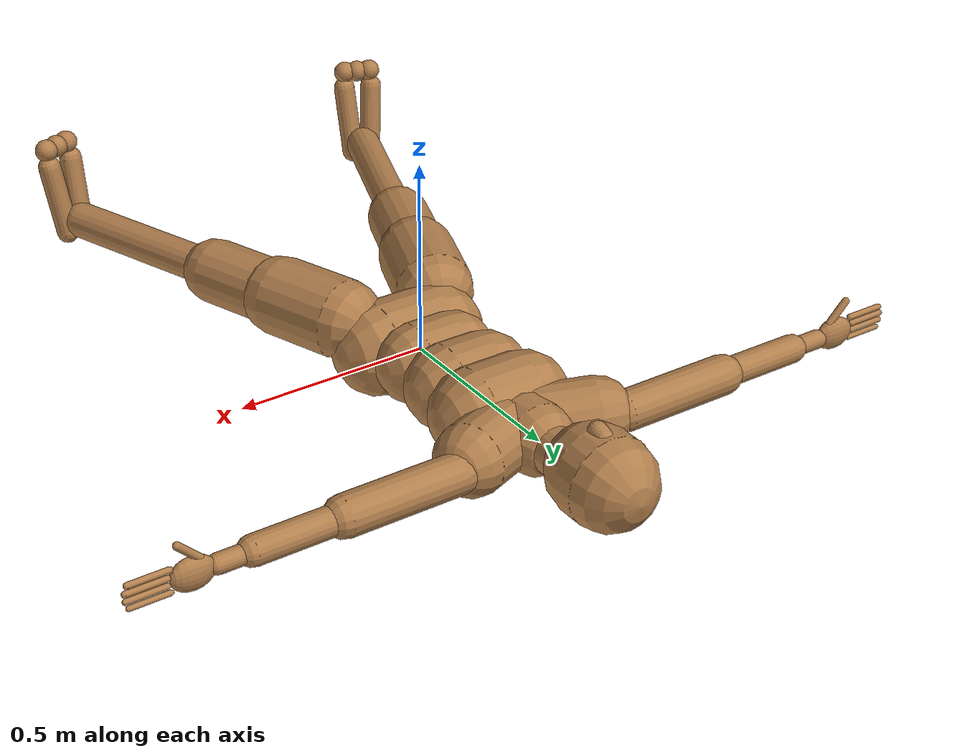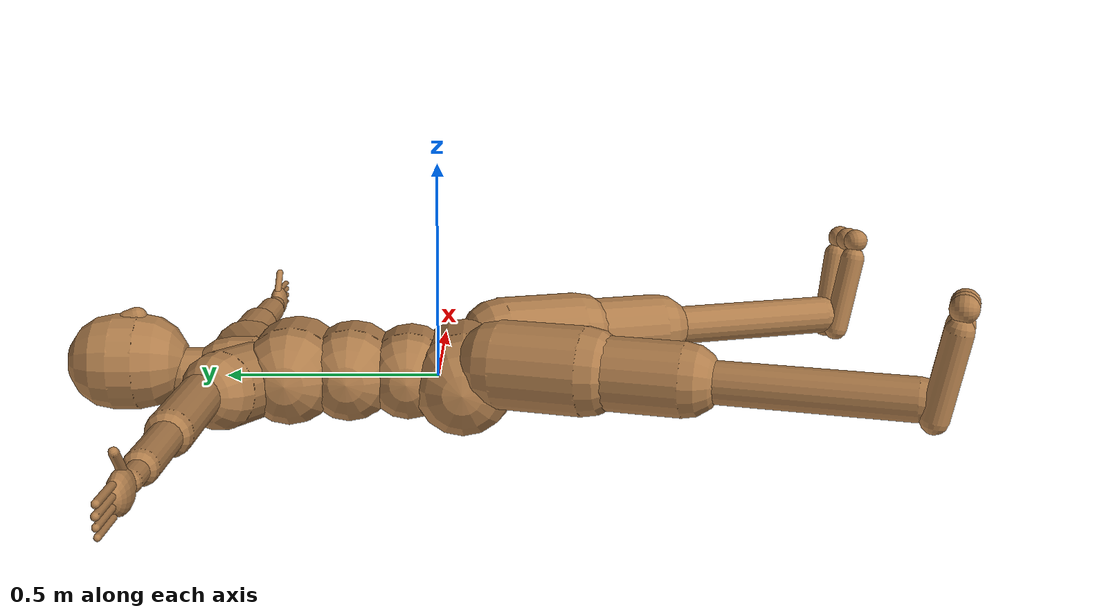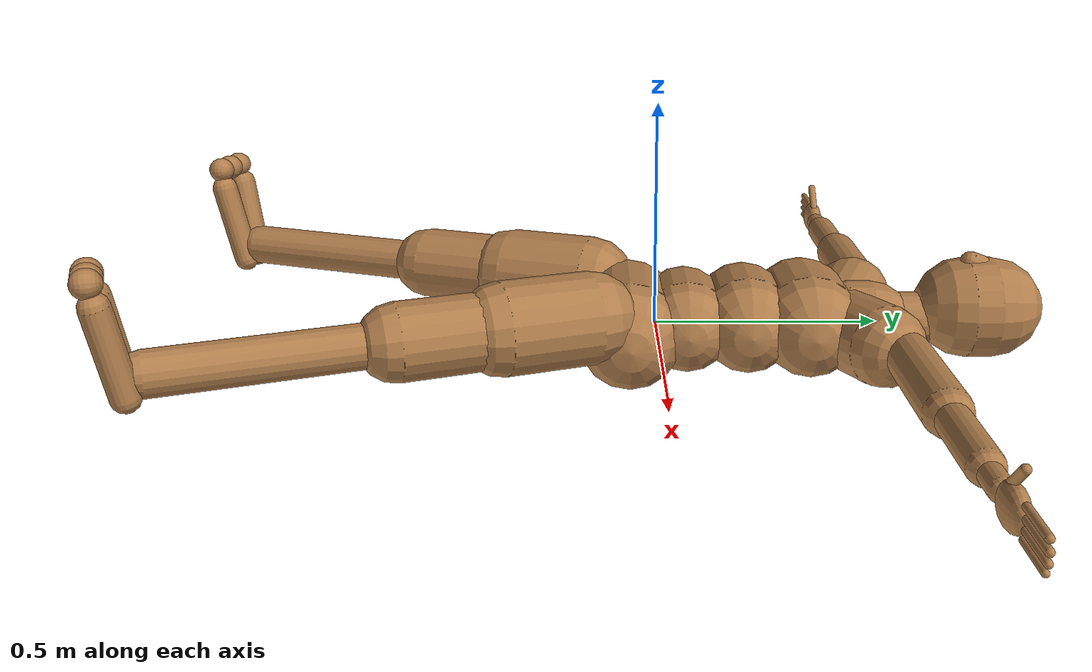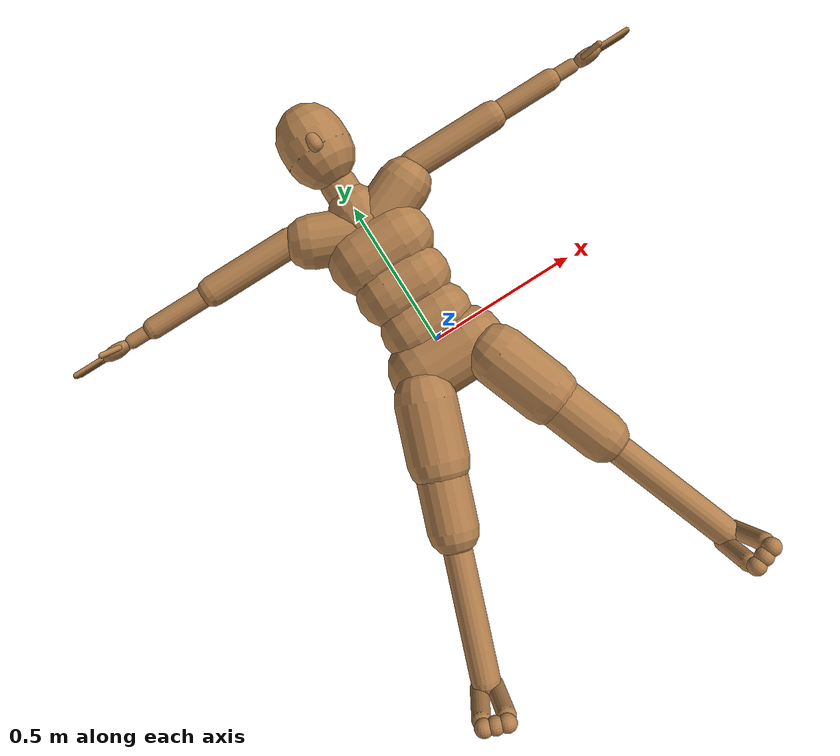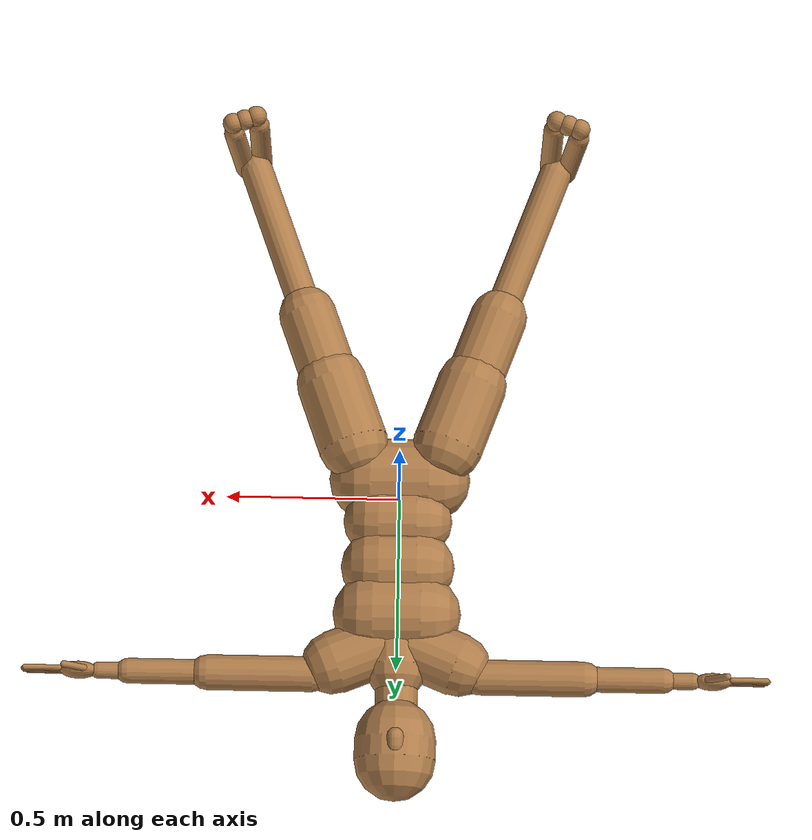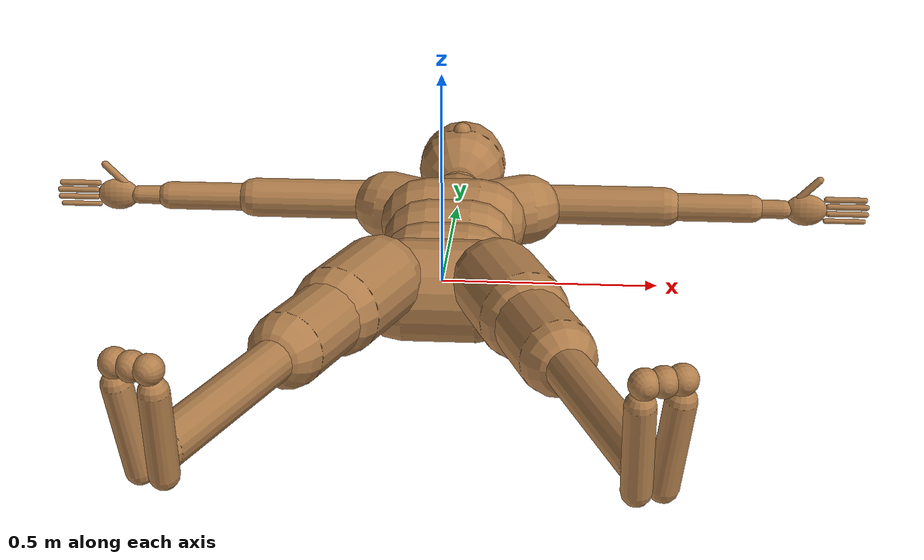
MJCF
<mujoco model="floor">
  <compiler boundmass="1e-05" boundinertia="1e-11" coordinate="local" angle="radian" eulerseq="xyz"/>
  <option timestep="0.005" cone="elliptic" noslip_iterations="5" noslip_tolerance="0.0"/>
  <size njmax="500" nconmax="500"/>
  <visual>
    <headlight ambient="0.40000000000000002 0.40000000000000002 0.40000000000000002" diffuse="0.80000000000000004 0.80000000000000004 0.80000000000000004" specular="0.10000000000000001 0.10000000000000001 0.10000000000000001"/>
    <map znear="0.01"/>
    <scale forcewidth="0.01" contactwidth="0.06" contactheight="0.01" jointwidth="0.01" framelength="0.3" framewidth="0.01"/>
  </visual>
  <default>
    <default class="/"/>
    <default class="walker/">
      <joint limited="true" solimplimit="0 0.98999999999999999 0.01" stiffness="1.0" armature="0.01" damping="1.0"/>
      <geom condim="1" size="0.029999999999999999 0 0" friction="0.69999999999999996 0.0050000000000000001 0.0001" solref="0.014999999999999999 1" solimp="0.98999999999999999 0.98999999999999999 0.0030000000000000001"/>
      <general ctrllimited="true" forcelimited="true" ctrlrange="-1 1"/>
      <default class="walker/humanoid">
        <geom type="capsule" group="2" material="walker/self"/>
        <default class="walker/stiff_medium">
          <joint stiffness="10.0" damping="2.0"/>
        </default>
        <default class="walker/stiff_medium_higher">
          <joint stiffness="50.0" damping="4.0"/>
        </default>
        <default class="walker/stiff_high">
          <joint stiffness="200.0" damping="5.0"/>
        </default>
        <default class="walker/sensor_site">
          <site type="sphere" group="4" rgba="1 0 0 0.5" size="0.01"/>
        </default>
        <default class="walker/contact">
          <geom condim="3" priority="1" friction="1 0.0050000000000000001 0.0001" solref="0.014999999999999999 1" solimp="0.97999999999999998 0.97999999999999998 0.001"/>
        </default>
      </default>
    </default>
  </default>
  <asset>
    <texture name="groundplane" type="2d" builtin="checker" rgb1="0.20000000000000001 0.29999999999999999 0.40000000000000002" rgb2="0.10000000000000001 0.20000000000000001 0.29999999999999999" mark="edge" markrgb="0.80000000000000004 0.80000000000000004 0.80000000000000004" width="200" height="200"/>
    <material name="groundplane" class="/" texture="groundplane" texrepeat="2 2" texuniform="true" reflectance="0.2"/>
    <material name="walker/self" class="walker/" rgba="0.69999999999999996 0.5 0.29999999999999999 1"/>
  </asset>
  <worldbody>
    <camera name="top_camera" class="/" fovy="10.058147163570894" pos="0 0 100" quat="1 0 0 0"/>
    <body name="walker/">
      <freejoint name="walker/"/>
      <light name="walker/tracking_light" class="walker/" mode="trackcom" pos="0 0 8.4000000000000004" dir="0 0 -1"/>
      <camera name="walker/back" class="walker/" mode="trackcom" pos="0 3.5999999999999996 1.6799999999999999" xyaxes="-1 0 0 0 -1 2"/>
      <camera name="walker/side" class="walker/" mode="trackcom" pos="-3.5999999999999996 0 1.6799999999999999" xyaxes="0 -1 0 1 0 2"/>
      <camera name="walker/front_side" class="walker/" mode="trackcom" pos="-2.3999999999999999 -2.3999999999999999 0.59999999999999998" xyaxes="0.5 -0.5 0 0.10000000000000001 0.10000000000000001 1"/>
      <body name="walker/root" childclass="walker/humanoid">
        <camera name="walker/bodycam" fovy="80.0" pos="0 0.35999999999999999 0.12" xyaxes="-1 0 0 0 1 0"/>
        <site name="walker/root" rgba="0.5 0.5 0.5 0" size="0.012"/>
        <geom name="walker/root_geom" size="0.12 0.084000000000000005" density="674.0490479671504" pos="0 -0.059999999999999998 0" quat="1 0 -1 0"/>
        <body name="walker/lhipjoint">
          <geom name="walker/lhipjoint" size="0.0095999999999999992 0.026248356" density="674.0490479671504" pos="0.0611622 -0.055084439999999998 0.029667599999999995" quat="0.57079999999999997 -0.56660200000000005 -0.59426400000000001 0"/>
          <body name="walker/lfemur" pos="0.1223244 -0.11016888 0.059335319999999997" quat="0.98480800000000002 0 0 0.173648">
            <joint name="walker/lfemurrz" class="walker/stiff_medium" pos="0 0 0" axis="0 0 1" range="-1.0471999999999999 1.22173" damping="10.0"/>
            <joint name="walker/lfemurry" class="walker/stiff_medium" pos="0 0 0" axis="0 1 0" range="-1.22173 1.22173" damping="10.0"/>
            <joint name="walker/lfemurrx" class="walker/stiff_medium" pos="0 0 0" axis="1 0 0" range="-2.7925300000000002 0.34906599999999999" damping="15.0"/>
            <geom name="walker/lfemur_upper" size="0.10200000000000001 0.099600000000000008" mass="0.0" pos="0 -0.13856760000000001 0" quat="0.69636399999999998 -0.69636399999999998 -0.12278799999999999 -0.12278799999999999"/>
            <geom name="walker/lfemur" size="0.084000000000000005 0.21867119999999998" density="674.0490479671504" pos="0 -0.24296759999999998 0" quat="0.69636399999999998 -0.69636399999999998 -0.12278799999999999 -0.12278799999999999"/>
            <body name="walker/ltibia" pos="0 -0.48593399999999998 0">
              <joint name="walker/ltibiarx" pos="0 0 0" axis="1 0 0" range="0.01 2.96706" damping="8.0"/>
              <geom name="walker/ltibia" size="0.048000000000000001 0.21907368000000002" density="674.0490479671504" pos="0 -0.2434152 0" quat="0.69636399999999998 -0.69636399999999998 -0.12278799999999999 -0.12278799999999999"/>
              <body name="walker/lfoot" pos="0 -0.49883159999999993 0" quat="1 -1 0 0">
                <site name="walker/lfoot_touch" class="walker/sensor_site" type="capsule" size="0.029999999999999999 0.012" pos="0 0.024 -0.017999999999999999" zaxis="1 0 0"/>
                <joint name="walker/lfootrz" class="walker/stiff_medium" pos="0 0 0" axis="0 0 1" range="-1.22173 0.34906599999999999" damping="3.0"/>
                <joint name="walker/lfootrx" class="walker/stiff_medium" pos="0 0 0" axis="1 0 0" range="-0.78539800000000004 0.80000000000000004" damping="6.0"/>
                <geom name="walker/lfoot" class="walker/contact" size="0.029999999999999999 0.096000000000000002" density="674.0490479671504" pos="-0.03239999700072 -0.059999999999999998 -0.01366536" quat="0.76725516000000005 -0.64051113999999998 0.023064870000000001 -0.023065829999999999"/>
                <geom name="walker/lfoot_ch" class="walker/contact" size="0.029999999999999999 0.096000000000000002" density="674.0490479671504" pos="0.032400002999279996 -0.059999999999999998 -0.01366536" quat="0.72887265999999995 -0.59399462000000003 -0.24074282999999999 -0.2407425"/>
                <body name="walker/ltoes" pos="0 -0.18764640000000002 -0.027330719999999999">
                  <joint name="walker/ltoesrx" pos="0 0 0" axis="1 0 0" range="-1.5708 0.34906599999999999" damping="1.0"/>
                  <geom name="walker/ltoes0" class="walker/contact" type="sphere" size="0.029999999999999999" density="674.0490479671504" pos="0 -0.012 -0.012"/>
                  <geom name="walker/ltoes1" class="walker/contact" type="sphere" size="0.029999999999999999" density="674.0490479671504" pos="0.035999999999999997 -0.012 -0.012"/>
                  <geom name="walker/ltoes2" class="walker/contact" type="sphere" size="0.029999999999999999" density="674.0490479671504" pos="-0.035999999999999997 -0.012 -0.012"/>
                  <site name="walker/ltoes_touch" class="walker/sensor_site" type="capsule" size="0.029999999999999999 0.035999999999999997" pos="0 -0.012 -0.024" zaxis="1 0 0"/>
                </body>
              </body>
            </body>
          </body>
        </body>
        <body name="walker/rhipjoint">
          <geom name="walker/rhipjoint" size="0.0095999999999999992 0.026248356" density="674.0490479671504" pos="-0.0611622 -0.055084439999999998 0.029667599999999995" quat="0.57485600000000003 -0.54759400000000003 0.60801400000000005 0"/>
          <body name="walker/rfemur" pos="-0.1223244 -0.11016888 0.059335319999999997" quat="0.98480800000000002 0 0 -0.173648">
            <joint name="walker/rfemurrz" class="walker/stiff_medium" pos="0 0 0" axis="0 0 1" range="-1.22173 1.0471999999999999" damping="10.0"/>
            <joint name="walker/rfemurry" class="walker/stiff_medium" pos="0 0 0" axis="0 1 0" range="-1.22173 1.22173" damping="10.0"/>
            <joint name="walker/rfemurrx" class="walker/stiff_medium" pos="0 0 0" axis="1 0 0" range="-2.7925300000000002 0.34906599999999999" damping="15.0"/>
            <geom name="walker/rfemur_upper" size="0.10200000000000001 0.099600000000000008" mass="0.0" pos="0 -0.13856760000000001 0" quat="0.69636399999999998 -0.69636399999999998 0.12278799999999999 0.12278799999999999"/>
            <geom name="walker/rfemur" size="0.084000000000000005 0.21867119999999998" density="674.0490479671504" pos="0 -0.24296759999999998 0" quat="0.69636399999999998 -0.69636399999999998 0.12278799999999999 0.12278799999999999"/>
            <body name="walker/rtibia" pos="0 -0.48593399999999998 0">
              <joint name="walker/rtibiarx" pos="0 0 0" axis="1 0 0" range="0.01 2.96706" damping="8.0"/>
              <geom name="walker/rtibia" size="0.048000000000000001 0.21907368000000002" density="674.0490479671504" pos="0 -0.2434152 0" quat="0.69636399999999998 -0.69636399999999998 0.12278799999999999 0.12278799999999999"/>
              <body name="walker/rfoot" pos="0 -0.49883159999999993 0" quat="0.70710700000000004 -0.70710700000000004 0 0">
                <site name="walker/rfoot_touch" class="walker/sensor_site" type="capsule" size="0.029999999999999999 0.012" pos="0 0.024 -0.017999999999999999" zaxis="1 0 0"/>
                <joint name="walker/rfootrz" class="walker/stiff_medium" pos="0 0 0" axis="0 0 1" range="-0.34906599999999999 1.22173" damping="3.0"/>
                <joint name="walker/rfootrx" class="walker/stiff_medium" pos="0 0 0" axis="1 0 0" range="-0.78539800000000004 0.80000000000000004" damping="6.0"/>
                <geom name="walker/rfoot" class="walker/contact" size="0.029999999999999999 0.096000000000000002" density="674.0490479671504" pos="-0.032399995837919998 -0.059999999999999998 -0.01366536" quat="0.73520686999999996 -0.58633522999999999 0.24050108000000001 0.24050078999999999"/>
                <geom name="walker/rfoot_ch" class="walker/contact" size="0.029999999999999999 0.096000000000000002" density="674.0490479671504" pos="0.032400004162079998 -0.059999999999999998 -0.01366536" quat="0.77312468999999995 -0.63323099999999999 -0.025458459999999999 0.025458359999999999"/>
                <body name="walker/rtoes" pos="0 -0.18764640000000002 -0.027330719999999999">
                  <joint name="walker/rtoesrx" pos="0 0 0" axis="1 0 0" range="-1.5708 0.34906599999999999" damping="1.0"/>
                  <geom name="walker/rtoes0" class="walker/contact" type="sphere" size="0.029999999999999999" density="674.0490479671504" pos="0 -0.012 -0.012"/>
                  <geom name="walker/rtoes1" class="walker/contact" type="sphere" size="0.029999999999999999" density="674.0490479671504" pos="0.035999999999999997 -0.012 -0.012"/>
                  <geom name="walker/rtoes2" class="walker/contact" type="sphere" size="0.029999999999999999" density="674.0490479671504" pos="-0.035999999999999997 -0.012 -0.012"/>
                  <site name="walker/rtoes_touch" class="walker/sensor_site" type="capsule" size="0.029999999999999999 0.035999999999999997" pos="0 -0.012 -0.024" zaxis="1 0 0"/>
                </body>
              </body>
            </body>
          </body>
        </body>
        <body name="walker/lowerback">
          <joint name="walker/lowerbackrz" class="walker/stiff_high" pos="0 0 0" axis="0 0 1" range="-0.52359900000000004 0.52359900000000004" damping="20.0"/>
          <joint name="walker/lowerbackry" class="walker/stiff_high" pos="0 0 0" axis="0 1 0" range="-0.52359900000000004 0.52359900000000004" damping="20.0"/>
          <joint name="walker/lowerbackrx" class="walker/stiff_medium" pos="0 0 0" axis="1 0 0" range="-0.34906599999999999 0.78539800000000004" damping="15.0"/>
          <geom name="walker/lowerback" size="0.10200000000000001 0.054480192000000004" density="674.0490479671504" pos="0.0033951719999999997 0.067927799999999997 0.012" quat="1 0 1 0"/>
          <body name="walker/upperback" pos="0.00067903439999999994 0.13585559999999999 -0.0096635759999999984">
            <joint name="walker/upperbackrz" class="walker/stiff_high" pos="0 0 0" axis="0 0 1" range="-0.52359900000000004 0.52359900000000004" damping="12.0"/>
            <joint name="walker/upperbackry" class="walker/stiff_high" pos="0 0 0" axis="0 1 0" range="-0.52359900000000004 0.52359900000000004" damping="8.0"/>
            <joint name="walker/upperbackrx" class="walker/stiff_medium" pos="0 0 0" axis="1 0 0" range="-0.34906599999999999 0.78539800000000004" damping="15.0"/>
            <geom name="walker/upperback" size="0.108 0.054511391999999999" density="674.0490479671504" pos="0.00030751680000000003 0.068136240000000001 0.024" quat="1 0 1 0"/>
            <body name="walker/thorax" pos="0.00061503360000000006 0.13627199999999998 0.0011241852000000001">
              <joint name="walker/thoraxrz" class="walker/stiff_high" pos="0 0 0" axis="0 0 1" range="-0.52359900000000004 0.52359900000000004" damping="12.0"/>
              <joint name="walker/thoraxry" class="walker/stiff_high" pos="0 0 0" axis="0 1 0" range="-0.52359900000000004 0.52359900000000004" damping="8.0"/>
              <joint name="walker/thoraxrx" class="walker/stiff_medium" pos="0 0 0" axis="1 0 0" range="-0.34906599999999999 0.78539800000000004" damping="15.0"/>
              <geom name="walker/thorax" size="0.11399999999999999 0.068424719999999994" density="674.0490479671504" pos="0 0.068366999999999997 0.024" quat="1 0 1 0"/>
              <body name="walker/lowerneck" pos="0 0.13673399999999999 0.0056164439999999991">
                <joint name="walker/lowerneckrz" class="walker/stiff_medium_higher" pos="0 0 0" axis="0 0 1" range="-0.52359900000000004 0.52359900000000004" damping="20.0"/>
                <joint name="walker/lowerneckry" class="walker/stiff_medium_higher" pos="0 0 0" axis="0 1 0" range="-0.52359900000000004 0.52359900000000004" damping="20.0"/>
                <joint name="walker/lowerneckrx" class="walker/stiff_medium_higher" pos="0 0 0" axis="1 0 0" range="-0.34906599999999999 0.78539800000000004" damping="20.0"/>
                <geom name="walker/lowerneck" size="0.089999999999999997 0.027350699999999999" density="674.0490479671504" pos="-0.001980852 0.054288119999999995 0.0064123079999999994" quat="1 1 0 0"/>
                <body name="walker/upperneck" pos="-0.0039617159999999997 0.10857611999999998 0.01282464">
                  <joint name="walker/upperneckrz" class="walker/stiff_medium_higher" pos="0 0 0" axis="0 0 1" range="-0.52359900000000004 0.52359900000000004" damping="10.0"/>
                  <joint name="walker/upperneckry" class="walker/stiff_medium_higher" pos="0 0 0" axis="0 1 0" range="-0.52359900000000004 0.52359900000000004" damping="10.0"/>
                  <joint name="walker/upperneckrx" class="walker/stiff_medium_higher" pos="0 0 0" axis="1 0 0" range="-0.34906599999999999 0.78539800000000004" damping="10.0"/>
                  <geom name="walker/upperneck" size="0.059999999999999998 0.02703264" density="674.0490479671504" pos="0.00060105 0.053994719999999996 -0.0026957280000000001" quat="1 1 0 0"/>
                  <body name="walker/head" pos="0.0012021 0.156 -0.0053914560000000002">
                    <camera name="walker/egocentric" fovy="80.0" pos="0 0 0" xyaxes="-1 0 0 0 1 0"/>
                    <joint name="walker/headrz" class="walker/stiff_medium_higher" pos="0 0 0" axis="0 0 1" range="-0.52359900000000004 0.52359900000000004" damping="2.0"/>
                    <joint name="walker/headry" class="walker/stiff_medium_higher" pos="0 0 0" axis="0 1 0" range="-0.52359900000000004 0.52359900000000004" damping="2.0"/>
                    <joint name="walker/headrx" class="walker/stiff_medium_higher" pos="0 0 0" axis="1 0 0" range="-0.34906599999999999 0.78539800000000004" damping="2.0"/>
                    <geom name="walker/head" size="0.11399999999999999 0.028924800000000001" density="674.0490479671504" pos="0.00040975799999999998 0.057820799999999992 0.029999999999999999" quat="1 1 0 0"/>
                    <geom name="walker/face" type="capsule" contype="0" conaffinity="0" size="0.078 0.016799999999999999" mass="0.0" pos="0.00040975799999999998 0.057820799999999992 0.012" quat="0.71788700000000005 0.69614200000000004 -0.0049333399999999996 0"/>
                    <body name="walker/face" pos="0 0.046800000000000001 0.13200000000000001">
                      <geom name="walker/nose" type="capsule" contype="0" conaffinity="0" group="1" size="0.024 0.012" mass="0.0" pos="0 0 0" quat="1 0.69999999999999996 0 0"/>
                    </body>
                  </body>
                </body>
              </body>
              <body name="walker/lclavicle" pos="0 0.13673399999999999 0.0056164439999999991">
                <joint name="walker/lclaviclerz" class="walker/stiff_high" pos="0 0 0" axis="0 0 1" range="0 0.34906599999999999" damping="20.0"/>
                <joint name="walker/lclaviclery" class="walker/stiff_high" pos="0 0 0" axis="0 1 0" range="-0.34906599999999999 0.17453299999999999" damping="20.0"/>
                <geom name="walker/lclavicle" size="0.089999999999999997 0.071999999999999995" density="674.0490479671504" pos="0.11025803999999999 0.045916320000000004 0.0064284480000000007" quat="0.68799999999999994 0.27900000000000003 -0.67000000000000004 0"/>
                <body name="walker/lhumerus" pos="0.216 0.108 0.012856920000000001" quat="0.18301300000000001 0.68301299999999998 -0.68301299999999998 0.18301300000000001">
                  <joint name="walker/lhumerusrz" class="walker/stiff_medium" pos="0 0 0" axis="0 0 1" range="-1.1000000000000001 1.5708" damping="6.0"/>
                  <joint name="walker/lhumerusry" class="walker/stiff_medium" pos="0 0 0" axis="0 1 0" range="-1.5708 1.5708" damping="6.0"/>
                  <joint name="walker/lhumerusrx" class="walker/stiff_medium" pos="0 0 0" axis="1 0 0" range="-1.0471999999999999 1.5708" damping="6.0"/>
                  <site name="walker/lhumerus_ft" class="walker/sensor_site"/>
                  <geom name="walker/lhumerus" size="0.0504 0.14949467999999999" density="674.0490479671504" pos="0 -0.16610519999999998 0" quat="0.61237200000000003 -0.61237200000000003 0.35355300000000001 0.35355300000000001"/>
                  <body name="walker/lradius" pos="0 -0.3322116 0">
                    <joint name="walker/lradiusrx" pos="0 0 0" axis="1 0 0" range="-0.17453299999999999 2.96706" damping="5.0"/>
                    <geom name="walker/lradius" size="0.035999999999999997 0.098029331999999997" density="674.0490479671504" pos="0 -0.10892148 0" quat="0.61237200000000003 -0.61237200000000003 0.35355300000000001 0.35355300000000001"/>
                    <site name="walker/lwrist" pos="0 -0.21784319999999999 0" quat="-0.5 0 0.86602500000000004 0"/>
                    <body name="walker/lwrist" pos="0 -0.21784319999999999 0" quat="-0.5 0 0.86602500000000004 0">
                      <joint name="walker/lwristry" pos="0 0 0" axis="0 1 0" range="0 3.1415899999999999" damping="1.0"/>
                      <geom name="walker/lwrist" size="0.024 0.035999999999999997" density="674.0490479671504" pos="0 -0.035999999999999997 0" quat="1.59389e-11 -1.5938800000000001e-11 -0.70710700000000004 -0.70710700000000004"/>
                      <body name="walker/lhand" pos="0 -0.10892112 0">
                        <joint name="walker/lhandrz" pos="0 0 0" axis="0 0 1" range="-0.78539800000000004 0.78539800000000004" damping="1.0"/>
                        <joint name="walker/lhandrx" pos="0 0 0" axis="1 0 0" range="-1.5708 1.5708" damping="1.0"/>
                        <site name="walker/lhand_touch" class="walker/sensor_site" type="ellipsoid" size="0.0144 0.0060000000000000001 0.017999999999999999" pos="0 -0.020102399999999999 -0.024" quat="0 0 -1 -1"/>
                        <geom name="walker/lhand" class="walker/contact" type="ellipsoid" size="0.042000000000000003 0.024 0.053999999999999999" density="674.0490479671504" pos="0 -0.020102399999999999 0" quat="0 0 -1 -1"/>
                        <body name="walker/lfingers" pos="0 -0.089999999999999997 0">
                          <joint name="walker/lfingersrx" pos="0 0.017999999999999999 0" axis="1 0 0" range="0 1.5708" damping="1.0"/>
                          <site name="walker/lfingers_touch" class="walker/sensor_site" type="box" size="0.0276 0.015599999999999999 0.0035999999999999999" pos="0 -0.0504 -0.0083999999999999995"/>
                          <geom name="walker/lfinger0" class="walker/contact" size="0.0077999999999999996 0.048000000000000001" density="674.0490479671504" pos="-0.028799999999999999 -0.029999999999999999 0" quat="1 -1 0 0"/>
                          <geom name="walker/lfinger1" class="walker/contact" size="0.0077999999999999996 0.048000000000000001" density="674.0490479671504" pos="-0.0095999999999999992 -0.035999999999999997 0" quat="1 -1 0 0"/>
                          <geom name="walker/lfinger2" class="walker/contact" size="0.0071999999999999998 0.048000000000000001" density="674.0490479671504" pos="0.0095999999999999992 -0.035999999999999997 0" quat="1 -1 0 0"/>
                          <geom name="walker/lfinger3" class="walker/contact" size="0.0065999999999999991 0.048000000000000001" density="674.0490479671504" pos="0.028799999999999999 -0.029999999999999999 0" quat="1 -1 0 0"/>
                        </body>
                        <body name="walker/lthumb" pos="-0.029999999999999999 0 0" quat="0.92388000000000003 0 0 -0.382683">
                          <joint name="walker/lthumbrz" pos="0 0 0" axis="0 0 1" range="-0.78539800000000004 0.78539800000000004" damping="1.0"/>
                          <joint name="walker/lthumbrx" pos="0 0 0" axis="1 0 0" range="0 1.5700000000000001" damping="1.0"/>
                          <site name="walker/lthumb_touch" class="walker/sensor_site" type="box" size="0.0071999999999999998 0.015599999999999999 0.0035999999999999999" pos="0 -0.051599999999999993 -0.0083999999999999995"/>
                          <geom name="walker/lthumb" class="walker/contact" size="0.0095999999999999992 0.035999999999999997" density="674.0490479671504" pos="0 -0.035999999999999997 0" quat="0 0 -1 -1"/>
                        </body>
                      </body>
                    </body>
                  </body>
                </body>
              </body>
              <body name="walker/rclavicle" pos="0 0.13673399999999999 0.0056164439999999991">
                <joint name="walker/rclaviclerz" class="walker/stiff_high" pos="0 0 0" axis="0 0 1" range="-0.34906599999999999 0" damping="20.0"/>
                <joint name="walker/rclaviclery" class="walker/stiff_high" pos="0 0 0" axis="0 1 0" range="-0.17453299999999999 0.34906599999999999" damping="20.0"/>
                <geom name="walker/rclavicle" size="0.089999999999999997 0.071999999999999995" density="674.0490479671504" pos="-0.11025803999999999 0.045916320000000004 0.0064284480000000007" quat="0.68799999999999994 0.27900000000000003 0.67000000000000004 0"/>
                <body name="walker/rhumerus" pos="-0.216 0.108 0.012856920000000001" quat="0.18301300000000001 0.68301299999999998 0.68301299999999998 -0.18301300000000001">
                  <joint name="walker/rhumerusrz" class="walker/stiff_medium" pos="0 0 0" axis="0 0 1" range="-1.1000000000000001 1.5708" damping="6.0"/>
                  <joint name="walker/rhumerusry" class="walker/stiff_medium" pos="0 0 0" axis="0 1 0" range="-1.5708 1.5708" damping="6.0"/>
                  <joint name="walker/rhumerusrx" class="walker/stiff_medium" pos="0 0 0" axis="1 0 0" range="-1.0471999999999999 1.5708" damping="6.0"/>
                  <site name="walker/rhumerus_ft" class="walker/sensor_site"/>
                  <geom name="walker/rhumerus" size="0.0504 0.14949467999999999" density="674.0490479671504" pos="0 -0.16610519999999998 0" quat="0.61237200000000003 -0.61237200000000003 -0.35355300000000001 -0.35355300000000001"/>
                  <body name="walker/rradius" pos="0 -0.3322116 0">
                    <joint name="walker/rradiusrx" pos="0 0 0" axis="1 0 0" range="-0.17453299999999999 2.96706" damping="5.0"/>
                    <geom name="walker/rradius" size="0.035999999999999997 0.098029331999999997" density="674.0490479671504" pos="0 -0.10892148 0" quat="0.61238000000000004 -0.61237200000000003 -0.35355399999999998 -0.35354099999999999"/>
                    <body name="walker/rwrist" pos="0 -0.21784319999999999 0" quat="-0.5 0 -0.86602500000000004 0">
                      <joint name="walker/rwristry" pos="0 0 0" axis="0 1 0" range="-3.1415899999999999 0" damping="1.0"/>
                      <geom name="walker/rwrist" size="0.024 0.035999999999999997" density="674.0490479671504" pos="0 -0.035999999999999997 0" quat="0 0 1 1"/>
                      <body name="walker/rhand" pos="0 -0.10892112 0">
                        <joint name="walker/rhandrz" pos="0 0 0" axis="0 0 1" range="-0.78539800000000004 0.78539800000000004" damping="1.0"/>
                        <joint name="walker/rhandrx" pos="0 0 0" axis="1 0 0" range="-1.5708 1.5708" damping="1.0"/>
                        <site name="walker/rhand_touch" class="walker/sensor_site" type="ellipsoid" size="0.0144 0.0060000000000000001 0.017999999999999999" pos="0 -0.020102399999999999 -0.024" quat="0 0 1 1"/>
                        <geom name="walker/rhand" class="walker/contact" type="ellipsoid" size="0.042000000000000003 0.024 0.053999999999999999" density="674.0490479671504" pos="0 -0.020102399999999999 0" quat="0 0 1 1"/>
                        <body name="walker/rfingers" pos="0 -0.089999999999999997 0">
                          <joint name="walker/rfingersrx" pos="0 0.017999999999999999 0" axis="1 0 0" range="0 1.5708" damping="1.0"/>
                          <site name="walker/rfingers_touch" class="walker/sensor_site" type="box" size="0.0276 0.015599999999999999 0.0035999999999999999" pos="0 -0.0504 -0.0083999999999999995"/>
                          <geom name="walker/rfinger0" class="walker/contact" size="0.0077999999999999996 0.048000000000000001" density="674.0490479671504" pos="0.028799999999999999 -0.029999999999999999 0" quat="1 -1 0 0"/>
                          <geom name="walker/rfinger1" class="walker/contact" size="0.0077999999999999996 0.048000000000000001" density="674.0490479671504" pos="0.0095999999999999992 -0.035999999999999997 0" quat="1 -1 0 0"/>
                          <geom name="walker/rfinger2" class="walker/contact" size="0.0071999999999999998 0.048000000000000001" density="674.0490479671504" pos="-0.0095999999999999992 -0.035999999999999997 0" quat="1 -1 0 0"/>
                          <geom name="walker/rfinger3" class="walker/contact" size="0.0065999999999999991 0.048000000000000001" density="674.0490479671504" pos="-0.028799999999999999 -0.029999999999999999 0" quat="1 -1 0 0"/>
                        </body>
                        <body name="walker/rthumb" pos="0.029999999999999999 0 0" quat="0.92388000000000003 0 0 0.382683">
                          <joint name="walker/rthumbrz" pos="0 0 0" axis="0 0 1" range="-0.78539800000000004 0.78539800000000004" damping="1.0"/>
                          <joint name="walker/rthumbrx" pos="0 0 0" axis="1 0 0" range="0 1.5700000000000001" damping="1.0"/>
                          <site name="walker/rthumb_touch" class="walker/sensor_site" type="box" size="0.0071999999999999998 0.015599999999999999 0.0035999999999999999" pos="0 -0.051599999999999993 -0.0083999999999999995"/>
                          <geom name="walker/rthumb" class="walker/contact" size="0.0095999999999999992 0.035999999999999997" density="674.0490479671504" pos="0 -0.035999999999999997 0" quat="6.2177300000000004e-11 -6.3528400000000006e-11 0.70710700000000004 0.70710700000000004"/>
                        </body>
                      </body>
                    </body>
                  </body>
                </body>
              </body>
            </body>
          </body>
        </body>
      </body>
    </body>
  </worldbody>
  <contact>
    <exclude name="walker//unnamed_contact_0" body1="walker/lclavicle" body2="walker/rclavicle"/>
    <exclude name="walker//unnamed_contact_1" body1="walker/lowerneck" body2="walker/lclavicle"/>
    <exclude name="walker//unnamed_contact_2" body1="walker/lowerneck" body2="walker/rclavicle"/>
    <exclude name="walker//unnamed_contact_3" body1="walker/upperneck" body2="walker/lclavicle"/>
    <exclude name="walker//unnamed_contact_4" body1="walker/upperneck" body2="walker/rclavicle"/>
  </contact>
  <actuator>
    <general name="walker/headrx" class="walker/" ctrllimited="true" ctrlrange="-1 1" forcerange="-40 40" joint="walker/headrx" dyntype="filter" biastype="affine" dynprm="0.029999999999999999" gainprm="22.689279999999997" biasprm="8.7266399999999997 -40 0"/>
    <general name="walker/headry" class="walker/" ctrllimited="true" ctrlrange="-1 1" forcerange="-40 40" joint="walker/headry" dyntype="filter" biastype="affine" dynprm="0.029999999999999999" gainprm="20.943960000000001" biasprm="0 -40 0"/>
    <general name="walker/headrz" class="walker/" ctrllimited="true" ctrlrange="-1 1" forcerange="-40 40" joint="walker/headrz" dyntype="filter" biastype="affine" dynprm="0.029999999999999999" gainprm="20.943960000000001" biasprm="0 -40 0"/>
    <general name="walker/lclaviclery" class="walker/" ctrllimited="true" ctrlrange="-1 1" forcerange="-80 80" joint="walker/lclaviclery" dyntype="filter" biastype="affine" dynprm="0.029999999999999999" gainprm="20.943959999999997" biasprm="-6.981320000000002 -80 0"/>
    <general name="walker/lclaviclerz" class="walker/" ctrllimited="true" ctrlrange="-1 1" forcerange="-80 80" joint="walker/lclaviclerz" dyntype="filter" biastype="affine" dynprm="0.029999999999999999" gainprm="13.96264" biasprm="13.96264 -80 0"/>
    <general name="walker/lfemurrx" class="walker/" ctrllimited="true" ctrlrange="-1 1" forcerange="-300 300" joint="walker/lfemurrx" dyntype="filter" biastype="affine" dynprm="0.029999999999999999" gainprm="471.23940000000005" biasprm="-366.51960000000003 -300 0"/>
    <general name="walker/lfemurry" class="walker/" ctrllimited="true" ctrlrange="-1 1" forcerange="-200 200" joint="walker/lfemurry" dyntype="filter" biastype="affine" dynprm="0.029999999999999999" gainprm="244.346" biasprm="0 -200 0"/>
    <general name="walker/lfemurrz" class="walker/" ctrllimited="true" ctrlrange="-1 1" forcerange="-200 200" joint="walker/lfemurrz" dyntype="filter" biastype="affine" dynprm="0.029999999999999999" gainprm="226.893" biasprm="17.453000000000031 -200 0"/>
    <general name="walker/lfingersrx" class="walker/" ctrllimited="true" ctrlrange="-1 1" forcerange="-20 20" joint="walker/lfingersrx" dyntype="filter" biastype="affine" dynprm="0.029999999999999999" gainprm="15.708" biasprm="15.708 -20 0"/>
    <general name="walker/lfootrx" class="walker/" ctrllimited="true" ctrlrange="-1 1" forcerange="-120 120" joint="walker/lfootrx" dyntype="filter" biastype="affine" dynprm="0.029999999999999999" gainprm="95.12388" biasprm="0.87612000000000023 -120 0"/>
    <general name="walker/lfootrz" class="walker/" ctrllimited="true" ctrlrange="-1 1" forcerange="-50 50" joint="walker/lfootrz" dyntype="filter" biastype="affine" dynprm="0.029999999999999999" gainprm="39.2699" biasprm="-21.816599999999998 -50 0"/>
    <general name="walker/lhandrx" class="walker/" ctrllimited="true" ctrlrange="-1 1" forcerange="-20 20" joint="walker/lhandrx" dyntype="filter" biastype="affine" dynprm="0.029999999999999999" gainprm="31.416" biasprm="0 -20 0"/>
    <general name="walker/lhandrz" class="walker/" ctrllimited="true" ctrlrange="-1 1" forcerange="-20 20" joint="walker/lhandrz" dyntype="filter" biastype="affine" dynprm="0.029999999999999999" gainprm="15.70796" biasprm="0 -20 0"/>
    <general name="walker/lhumerusrx" class="walker/" ctrllimited="true" ctrlrange="-1 1" forcerange="-120 120" joint="walker/lhumerusrx" dyntype="filter" biastype="affine" dynprm="0.029999999999999999" gainprm="157.07999999999998" biasprm="31.416000000000004 -120 0"/>
    <general name="walker/lhumerusry" class="walker/" ctrllimited="true" ctrlrange="-1 1" forcerange="-120 120" joint="walker/lhumerusry" dyntype="filter" biastype="affine" dynprm="0.029999999999999999" gainprm="188.49600000000001" biasprm="0 -120 0"/>
    <general name="walker/lhumerusrz" class="walker/" ctrllimited="true" ctrlrange="-1 1" forcerange="-120 120" joint="walker/lhumerusrz" dyntype="filter" biastype="affine" dynprm="0.029999999999999999" gainprm="160.24799999999999" biasprm="28.24799999999998 -120 0"/>
    <general name="walker/lowerbackrx" class="walker/" ctrllimited="true" ctrlrange="-1 1" forcerange="-300 300" joint="walker/lowerbackrx" dyntype="filter" biastype="affine" dynprm="0.029999999999999999" gainprm="170.16959999999997" biasprm="65.449799999999996 -300 0"/>
    <general name="walker/lowerbackry" class="walker/" ctrllimited="true" ctrlrange="-1 1" forcerange="-180 180" joint="walker/lowerbackry" dyntype="filter" biastype="affine" dynprm="0.029999999999999999" gainprm="94.247820000000004" biasprm="0 -180 0"/>
    <general name="walker/lowerbackrz" class="walker/" ctrllimited="true" ctrlrange="-1 1" forcerange="-200 200" joint="walker/lowerbackrz" dyntype="filter" biastype="affine" dynprm="0.029999999999999999" gainprm="104.71980000000001" biasprm="0 -200 0"/>
    <general name="walker/lowerneckrx" class="walker/" ctrllimited="true" ctrlrange="-1 1" forcerange="-120 120" joint="walker/lowerneckrx" dyntype="filter" biastype="affine" dynprm="0.029999999999999999" gainprm="68.06783999999999" biasprm="26.179919999999996 -120 0"/>
    <general name="walker/lowerneckry" class="walker/" ctrllimited="true" ctrlrange="-1 1" forcerange="-120 120" joint="walker/lowerneckry" dyntype="filter" biastype="affine" dynprm="0.029999999999999999" gainprm="62.831880000000005" biasprm="0 -120 0"/>
    <general name="walker/lowerneckrz" class="walker/" ctrllimited="true" ctrlrange="-1 1" forcerange="-120 120" joint="walker/lowerneckrz" dyntype="filter" biastype="affine" dynprm="0.029999999999999999" gainprm="62.831880000000005" biasprm="0 -120 0"/>
    <general name="walker/lradiusrx" class="walker/" ctrllimited="true" ctrlrange="-1 1" forcerange="-90 90" joint="walker/lradiusrx" dyntype="filter" biastype="affine" dynprm="0.029999999999999999" gainprm="141.37168499999999" biasprm="125.663715 -90 0"/>
    <general name="walker/lthumbrx" class="walker/" ctrllimited="true" ctrlrange="-1 1" forcerange="-20 20" joint="walker/lthumbrx" dyntype="filter" biastype="affine" dynprm="0.029999999999999999" gainprm="15.700000000000001" biasprm="15.700000000000001 -20 0"/>
    <general name="walker/lthumbrz" class="walker/" ctrllimited="true" ctrlrange="-1 1" forcerange="-20 20" joint="walker/lthumbrz" dyntype="filter" biastype="affine" dynprm="0.029999999999999999" gainprm="15.70796" biasprm="0 -20 0"/>
    <general name="walker/ltibiarx" class="walker/" ctrllimited="true" ctrlrange="-1 1" forcerange="-160 160" joint="walker/ltibiarx" dyntype="filter" biastype="affine" dynprm="0.029999999999999999" gainprm="236.56480000000002" biasprm="238.16480000000001 -160 0"/>
    <general name="walker/ltoesrx" class="walker/" ctrllimited="true" ctrlrange="-1 1" forcerange="-20 20" joint="walker/ltoesrx" dyntype="filter" biastype="affine" dynprm="0.029999999999999999" gainprm="19.198659999999997" biasprm="-12.21734 -20 0"/>
    <general name="walker/lwristry" class="walker/" ctrllimited="true" ctrlrange="-1 1" forcerange="-20 20" joint="walker/lwristry" dyntype="filter" biastype="affine" dynprm="0.029999999999999999" gainprm="31.415900000000001" biasprm="31.415900000000001 -20 0"/>
    <general name="walker/rclaviclery" class="walker/" ctrllimited="true" ctrlrange="-1 1" forcerange="-80 80" joint="walker/rclaviclery" dyntype="filter" biastype="affine" dynprm="0.029999999999999999" gainprm="20.943959999999997" biasprm="6.9813199999999975 -80 0"/>
    <general name="walker/rclaviclerz" class="walker/" ctrllimited="true" ctrlrange="-1 1" forcerange="-80 80" joint="walker/rclaviclerz" dyntype="filter" biastype="affine" dynprm="0.029999999999999999" gainprm="13.96264" biasprm="-13.96264 -80 0"/>
    <general name="walker/rfemurrx" class="walker/" ctrllimited="true" ctrlrange="-1 1" forcerange="-300 300" joint="walker/rfemurrx" dyntype="filter" biastype="affine" dynprm="0.029999999999999999" gainprm="471.23940000000005" biasprm="-366.51960000000003 -300 0"/>
    <general name="walker/rfemurry" class="walker/" ctrllimited="true" ctrlrange="-1 1" forcerange="-200 200" joint="walker/rfemurry" dyntype="filter" biastype="affine" dynprm="0.029999999999999999" gainprm="244.346" biasprm="0 -200 0"/>
    <general name="walker/rfemurrz" class="walker/" ctrllimited="true" ctrlrange="-1 1" forcerange="-200 200" joint="walker/rfemurrz" dyntype="filter" biastype="affine" dynprm="0.029999999999999999" gainprm="226.893" biasprm="-17.452999999999985 -200 0"/>
    <general name="walker/rfingersrx" class="walker/" ctrllimited="true" ctrlrange="-1 1" forcerange="-20 20" joint="walker/rfingersrx" dyntype="filter" biastype="affine" dynprm="0.029999999999999999" gainprm="15.708" biasprm="15.708 -20 0"/>
    <general name="walker/rfootrx" class="walker/" ctrllimited="true" ctrlrange="-1 1" forcerange="-120 120" joint="walker/rfootrx" dyntype="filter" biastype="affine" dynprm="0.029999999999999999" gainprm="95.12388" biasprm="0.87612000000000023 -120 0"/>
    <general name="walker/rfootrz" class="walker/" ctrllimited="true" ctrlrange="-1 1" forcerange="-50 50" joint="walker/rfootrz" dyntype="filter" biastype="affine" dynprm="0.029999999999999999" gainprm="39.2699" biasprm="21.816600000000001 -50 0"/>
    <general name="walker/rhandrx" class="walker/" ctrllimited="true" ctrlrange="-1 1" forcerange="-20 20" joint="walker/rhandrx" dyntype="filter" biastype="affine" dynprm="0.029999999999999999" gainprm="31.416" biasprm="0 -20 0"/>
    <general name="walker/rhandrz" class="walker/" ctrllimited="true" ctrlrange="-1 1" forcerange="-20 20" joint="walker/rhandrz" dyntype="filter" biastype="affine" dynprm="0.029999999999999999" gainprm="15.70796" biasprm="0 -20 0"/>
    <general name="walker/rhumerusrx" class="walker/" ctrllimited="true" ctrlrange="-1 1" forcerange="-120 120" joint="walker/rhumerusrx" dyntype="filter" biastype="affine" dynprm="0.029999999999999999" gainprm="157.07999999999998" biasprm="31.416000000000004 -120 0"/>
    <general name="walker/rhumerusry" class="walker/" ctrllimited="true" ctrlrange="-1 1" forcerange="-120 120" joint="walker/rhumerusry" dyntype="filter" biastype="affine" dynprm="0.029999999999999999" gainprm="188.49600000000001" biasprm="0 -120 0"/>
    <general name="walker/rhumerusrz" class="walker/" ctrllimited="true" ctrlrange="-1 1" forcerange="-120 120" joint="walker/rhumerusrz" dyntype="filter" biastype="affine" dynprm="0.029999999999999999" gainprm="160.24799999999999" biasprm="28.24799999999998 -120 0"/>
    <general name="walker/rradiusrx" class="walker/" ctrllimited="true" ctrlrange="-1 1" forcerange="-90 90" joint="walker/rradiusrx" dyntype="filter" biastype="affine" dynprm="0.029999999999999999" gainprm="141.37168499999999" biasprm="125.663715 -90 0"/>
    <general name="walker/rthumbrx" class="walker/" ctrllimited="true" ctrlrange="-1 1" forcerange="-20 20" joint="walker/rthumbrx" dyntype="filter" biastype="affine" dynprm="0.029999999999999999" gainprm="15.700000000000001" biasprm="15.700000000000001 -20 0"/>
    <general name="walker/rthumbrz" class="walker/" ctrllimited="true" ctrlrange="-1 1" forcerange="-20 20" joint="walker/rthumbrz" dyntype="filter" biastype="affine" dynprm="0.029999999999999999" gainprm="15.70796" biasprm="0 -20 0"/>
    <general name="walker/rtibiarx" class="walker/" ctrllimited="true" ctrlrange="-1 1" forcerange="-160 160" joint="walker/rtibiarx" dyntype="filter" biastype="affine" dynprm="0.029999999999999999" gainprm="236.56480000000002" biasprm="238.16480000000001 -160 0"/>
    <general name="walker/rtoesrx" class="walker/" ctrllimited="true" ctrlrange="-1 1" forcerange="-20 20" joint="walker/rtoesrx" dyntype="filter" biastype="affine" dynprm="0.029999999999999999" gainprm="19.198659999999997" biasprm="-12.21734 -20 0"/>
    <general name="walker/rwristry" class="walker/" ctrllimited="true" ctrlrange="-1 1" forcerange="-20 20" joint="walker/rwristry" dyntype="filter" biastype="affine" dynprm="0.029999999999999999" gainprm="31.415900000000001" biasprm="-31.415900000000001 -20 0"/>
    <general name="walker/thoraxrx" class="walker/" ctrllimited="true" ctrlrange="-1 1" forcerange="-300 300" joint="walker/thoraxrx" dyntype="filter" biastype="affine" dynprm="0.029999999999999999" gainprm="170.16959999999997" biasprm="65.449799999999996 -300 0"/>
    <general name="walker/thoraxry" class="walker/" ctrllimited="true" ctrlrange="-1 1" forcerange="-80 80" joint="walker/thoraxry" dyntype="filter" biastype="affine" dynprm="0.029999999999999999" gainprm="41.887920000000001" biasprm="0 -80 0"/>
    <general name="walker/thoraxrz" class="walker/" ctrllimited="true" ctrlrange="-1 1" forcerange="-200 200" joint="walker/thoraxrz" dyntype="filter" biastype="affine" dynprm="0.029999999999999999" gainprm="104.71980000000001" biasprm="0 -200 0"/>
    <general name="walker/upperbackrx" class="walker/" ctrllimited="true" ctrlrange="-1 1" forcerange="-300 300" joint="walker/upperbackrx" dyntype="filter" biastype="affine" dynprm="0.029999999999999999" gainprm="170.16959999999997" biasprm="65.449799999999996 -300 0"/>
    <general name="walker/upperbackry" class="walker/" ctrllimited="true" ctrlrange="-1 1" forcerange="-80 80" joint="walker/upperbackry" dyntype="filter" biastype="affine" dynprm="0.029999999999999999" gainprm="41.887920000000001" biasprm="0 -80 0"/>
    <general name="walker/upperbackrz" class="walker/" ctrllimited="true" ctrlrange="-1 1" forcerange="-200 200" joint="walker/upperbackrz" dyntype="filter" biastype="affine" dynprm="0.029999999999999999" gainprm="104.71980000000001" biasprm="0 -200 0"/>
    <general name="walker/upperneckrx" class="walker/" ctrllimited="true" ctrlrange="-1 1" forcerange="-60 60" joint="walker/upperneckrx" dyntype="filter" biastype="affine" dynprm="0.029999999999999999" gainprm="34.033919999999995" biasprm="13.089959999999998 -60 0"/>
    <general name="walker/upperneckry" class="walker/" ctrllimited="true" ctrlrange="-1 1" forcerange="-60 60" joint="walker/upperneckry" dyntype="filter" biastype="affine" dynprm="0.029999999999999999" gainprm="31.415940000000003" biasprm="0 -60 0"/>
    <general name="walker/upperneckrz" class="walker/" ctrllimited="true" ctrlrange="-1 1" forcerange="-60 60" joint="walker/upperneckrz" dyntype="filter" biastype="affine" dynprm="0.029999999999999999" gainprm="31.415940000000003" biasprm="0 -60 0"/>
  </actuator>
  <sensor>
    <velocimeter name="walker/sensor_root_veloc" site="walker/root"/>
    <gyro name="walker/sensor_root_gyro" site="walker/root"/>
    <accelerometer name="walker/sensor_root_accel" site="walker/root"/>
    <touch name="walker/sensor_touch_lhand" site="walker/lhand_touch"/>
    <touch name="walker/sensor_touch_lfingers" site="walker/lfingers_touch"/>
    <touch name="walker/sensor_touch_lthumb" site="walker/lthumb_touch"/>
    <touch name="walker/sensor_touch_rhand" site="walker/rhand_touch"/>
    <touch name="walker/sensor_touch_rfingers" site="walker/rfingers_touch"/>
    <touch name="walker/sensor_touch_rthumb" site="walker/rthumb_touch"/>
    <touch name="walker/sensor_touch_ltoes" site="walker/ltoes_touch"/>
    <touch name="walker/sensor_touch_rtoes" site="walker/rtoes_touch"/>
    <touch name="walker/sensor_touch_rfoot" site="walker/rfoot_touch"/>
    <touch name="walker/sensor_touch_lfoot" site="walker/lfoot_touch"/>
    <torque name="walker/sensor_torque_lhumerus" site="walker/lhumerus_ft"/>
    <torque name="walker/sensor_torque_rhumerus" site="walker/rhumerus_ft"/>
  </sensor>
</mujoco>
